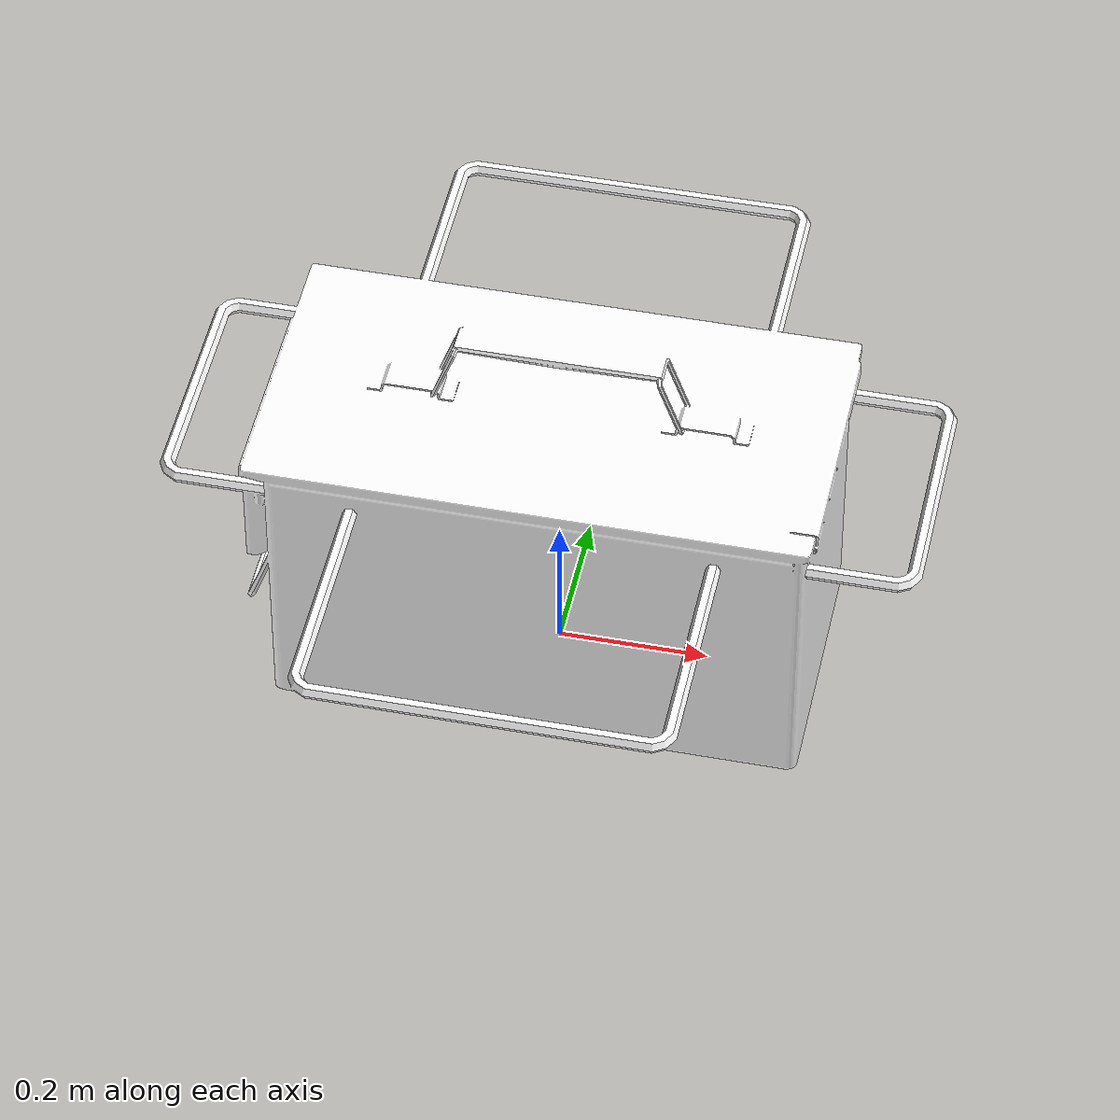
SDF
<?xml version='1.0' ?>
<sdf version="1.6">
    <model name="large_ammo_can_handles">
        <static>false</static>
        <link name="suspension_front_left">
            <pose>.35 .1779 0.025 0 0 0</pose>
            <inertial>
                <mass>0.5</mass>
                <inertia>
                    <ixx>8e-5</ixx>
                    <ixy>0.0</ixy>
                    <ixz>0.0</ixz>
                    <iyy>8e-5</iyy>
                    <iyz>0.0</iyz>
                    <izz>8e-5</izz>
                </inertia>
            </inertial>
        </link>
        <joint name="joint_suspension_front_left" type="prismatic">
            <parent>link</parent>
            <child>suspension_front_left</child>
            <axis>
                <xyz>0 0 1</xyz>
                <dynamics>
                    <damping>100</damping>
                    <spring_reference>-0.05</spring_reference>
                    <spring_stiffness>350</spring_stiffness>
                </dynamics>
                <limit>
                    <lower>-0.05</lower>
                    <upper>0.00</upper>
                </limit>
            </axis>
            <physics>
                <ode>
                    <implicit_spring_damper>true</implicit_spring_damper>
                </ode>
            </physics>
        </joint>
        <link name="caster_front_left">
            <pose>.35 .1779 0.025 0 0 0</pose>
            <inertial>
                <mass>0.5</mass>
                <inertia>
                    <ixx>8e-5</ixx>
                    <ixy>0.0</ixy>
                    <ixz>0.0</ixz>
                    <iyy>8e-5</iyy>
                    <iyz>0.0</iyz>
                    <izz>8e-5</izz>
                </inertia>
            </inertial>
            <collision name="caster_front_left_col">
                <geometry>
                    <sphere>
                        <radius>0.02</radius>
                    </sphere>
                </geometry>
                <surface>
                    <contact>
                        <ode>
                            <kp>10000000.0</kp>
                            <kd>1.0</kd>
                        </ode>
                    </contact>
                </surface>
            </collision>
        </link>
        <joint name="joint_caster_front_left" type="ball">
            <parent>suspension_front_left</parent>
            <child>caster_front_left</child>
            <axis>
                <xyz>0 0 1</xyz>
            </axis>
        </joint>
        <link name="suspension_front_right">
            <pose>.35 -.1779 0.025 0 0 0</pose>
            <inertial>
                <mass>0.5</mass>
                <inertia>
                    <ixx>8e-5</ixx>
                    <ixy>0.0</ixy>
                    <ixz>0.0</ixz>
                    <iyy>8e-5</iyy>
                    <iyz>0.0</iyz>
                    <izz>8e-5</izz>
                </inertia>
            </inertial>
        </link>
        <joint name="joint_suspension_front_right" type="prismatic">
            <parent>link</parent>
            <child>suspension_front_right</child>
            <axis>
                <xyz>0 0 1</xyz>
                <dynamics>
                    <damping>100</damping>
                    <spring_reference>-0.05</spring_reference>
                    <spring_stiffness>350</spring_stiffness>
                </dynamics>
                <limit>
                    <lower>-0.05</lower>
                    <upper>0.00</upper>
                </limit>
            </axis>
            <physics>
                <ode>
                    <implicit_spring_damper>true</implicit_spring_damper>
                </ode>
            </physics>
        </joint>
        <link name="caster_front_right">
            <pose>.35 -.1779 0.025 0 0 0</pose>
            <inertial>
                <mass>0.5</mass>
                <inertia>
                    <ixx>8e-5</ixx>
                    <ixy>0.0</ixy>
                    <ixz>0.0</ixz>
                    <iyy>8e-5</iyy>
                    <iyz>0.0</iyz>
                    <izz>8e-5</izz>
                </inertia>
            </inertial>
            <collision name="caster_front_right_col">
                <geometry>
                    <sphere>
                        <radius>0.02</radius>
                    </sphere>
                </geometry>
                <surface>
                    <contact>
                        <ode>
                            <kp>10000000.0</kp>
                            <kd>1.0</kd>
                        </ode>
                    </contact>
                </surface>
            </collision>
        </link>
        <joint name="joint_caster_front_right" type="ball">
            <parent>suspension_front_right</parent>
            <child>caster_front_right</child>
            <axis>
                <xyz>0 0 1</xyz>
            </axis>
        </joint>
        <link name="suspension_back_left">
            <pose>-.35 .1779 0.025 0 0 0</pose>
            <inertial>
                <mass>0.5</mass>
                <inertia>
                    <ixx>8e-5</ixx>
                    <ixy>0.0</ixy>
                    <ixz>0.0</ixz>
                    <iyy>8e-5</iyy>
                    <iyz>0.0</iyz>
                    <izz>8e-5</izz>
                </inertia>
            </inertial>
        </link>
        <joint name="joint_suspension_back_left" type="prismatic">
            <parent>link</parent>
            <child>suspension_back_left</child>
            <axis>
                <xyz>0 0 1</xyz>
                <dynamics>
                    <damping>100</damping>
                    <spring_reference>-0.05</spring_reference>
                    <spring_stiffness>350</spring_stiffness>
                </dynamics>
                <limit>
                    <lower>-0.05</lower>
                    <upper>0.00</upper>
                </limit>
            </axis>
            <physics>
                <ode>
                    <implicit_spring_damper>true</implicit_spring_damper>
                </ode>
            </physics>
        </joint>
        <link name="caster_back_left">
            <pose>-.35 .1779 0.025 0 0 0</pose>
            <inertial>
                <mass>0.5</mass>
                <inertia>
                    <ixx>8e-5</ixx>
                    <ixy>0.0</ixy>
                    <ixz>0.0</ixz>
                    <iyy>8e-5</iyy>
                    <iyz>0.0</iyz>
                    <izz>8e-5</izz>
                </inertia>
            </inertial>
            <collision name="caster_back_left_col">
                <geometry>
                    <sphere>
                        <radius>0.02</radius>
                    </sphere>
                </geometry>
                <surface>
                    <contact>
                        <ode>
                            <kp>10000000.0</kp>
                            <kd>1.0</kd>
                        </ode>
                    </contact>
                </surface>
            </collision>
        </link>
        <joint name="joint_caster_back_left" type="ball">
            <parent>suspension_back_left</parent>
            <child>caster_back_left</child>
            <axis>
                <xyz>0 0 1</xyz>
            </axis>
        </joint>
        <link name="suspension_back_right">
            <pose>-.35 -.1779 0.025 0 0 0</pose>
            <inertial>
                <mass>0.5</mass>
                <inertia>
                    <ixx>8e-5</ixx>
                    <ixy>0.0</ixy>
                    <ixz>0.0</ixz>
                    <iyy>8e-5</iyy>
                    <iyz>0.0</iyz>
                    <izz>8e-5</izz>
                </inertia>
            </inertial>
        </link>
        <joint name="joint_suspension_back_right" type="prismatic">
            <parent>link</parent>
            <child>suspension_back_right</child>
            <axis>
                <xyz>0 0 1</xyz>
                <dynamics>
                    <damping>100</damping>
                    <spring_reference>-0.05</spring_reference>
                    <spring_stiffness>350</spring_stiffness>
                </dynamics>
                <limit>
                    <lower>-0.05</lower>
                    <upper>0.00</upper>
                </limit>
            </axis>
            <physics>
                <ode>
                    <implicit_spring_damper>true</implicit_spring_damper>
                </ode>
            </physics>
        </joint>
        <link name="caster_back_right">
            <pose>-.35 -.1779 0.025 0 0 0</pose>
            <inertial>
                <mass>0.5</mass>
                <inertia>
                    <ixx>8e-5</ixx>
                    <ixy>0.0</ixy>
                    <ixz>0.0</ixz>
                    <iyy>8e-5</iyy>
                    <iyz>0.0</iyz>
                    <izz>8e-5</izz>
                </inertia>
            </inertial>
            <collision name="caster_back_right_col">
                <geometry>
                    <sphere>
                        <radius>0.02</radius>
                    </sphere>
                </geometry>
                <surface>
                    <contact>
                        <ode>
                            <kp>10000000.0</kp>
                            <kd>1.0</kd>
                        </ode>
                    </contact>
                </surface>
            </collision>
        </link>
        <joint name="joint_caster_back_right" type="ball">
            <parent>suspension_back_right</parent>
            <child>caster_back_right</child>
            <axis>
                <xyz>0 0 1</xyz>
            </axis>
        </joint>
        <link name="link">
            <inertial>
                <pose>0 0 0.23 0 0 0</pose>
                <mass>4</mass>
                <inertia>
                    <ixx>0.12386666</ixx>
                    <ixy>0.0</ixy>
                    <ixz>0.0</ixz>
                    <iyy>0.24333333</iyy>
                    <iyz>0.0</iyz>
                    <izz>0.22613333</izz>
                </inertia>
            </inertial>
            <visual name="visual">
                <geometry>
                    <mesh>
                        <uri>meshes/largeammocan.dae</uri>
                    </mesh>
                </geometry>
                <material>
                    <diffuse>1.0 1.0 1.0</diffuse>
                    <specular>1.0 1.0 1.0</specular>
                    <pbr>
                        <metal>
                            <albedo_map>materials/textures/LargeAmmoCan_Albedo.jpg</albedo_map>
                            <normal_map>materials/textures/LargeAmmoCan_Normal.jpg</normal_map>
                            <roughness_map>materials/textures/LargeAmmoCan_Roughness.jpg</roughness_map>
                            <metalness_map>materials/textures/LargeAmmoCan_Metalness.jpg</metalness_map>
                        </metal>
                    </pbr>
                </material>
            </visual>
            <collision name="Box068">
                <pose>0.235714 -0.158902 0.367364 1.5708 0.0 1.5708</pose>
                <geometry>
                    <box>
                        <size>0.02 0.02 0.517486</size>
                    </box>
                </geometry>
            </collision>
            <collision name="Box067">
                <pose>0.235714 0.158902 0.367364 1.5708 0.0 1.5708</pose>
                <geometry>
                    <box>
                        <size>0.02 0.02 0.517486</size>
                    </box>
                </geometry>
            </collision>
            <collision name="Box066">
                <pose>0.483951 -0.0032919 0.367364 1.5708 0.0 3.14159</pose>
                <geometry>
                    <box>
                        <size>0.02 0.02 0.326016</size>
                    </box>
                </geometry>
            </collision>
            <collision name="Box065">
                <pose>-0.48395 -0.0032919 0.367364 1.5708 0.0 3.14159</pose>
                <geometry>
                    <box>
                        <size>0.02 0.02 0.326016</size>
                    </box>
                </geometry>
            </collision>
            <collision name="Box064">
                <pose>-0.235714 -0.158902 0.367364 1.5708 0.0 -1.5708</pose>
                <geometry>
                    <box>
                        <size>0.02 0.02 0.517486</size>
                    </box>
                </geometry>
            </collision>
            <collision name="Box063">
                <pose>-0.235714 0.158902 0.367364 1.5708 0.0 -1.5708</pose>
                <geometry>
                    <box>
                        <size>0.02 0.02 0.517486</size>
                    </box>
                </geometry>
            </collision>
            <collision name="Box062">
                <pose>-0.000193328 -0.48429 0.367364 1.5708 0.0 1.5708</pose>
                <geometry>
                    <box>
                        <size>0.02 0.02 0.476087</size>
                    </box>
                </geometry>
            </collision>
            <collision name="Box061">
                <pose>-0.000193328 0.48429 0.367364 1.5708 0.0 1.5708</pose>
                <geometry>
                    <box>
                        <size>0.02 0.02 0.476087</size>
                    </box>
                </geometry>
            </collision>
            <collision name="Box060">
                <pose>-0.235466 0.235109 0.367364 1.5708 0.0 3.14159</pose>
                <geometry>
                    <box>
                        <size>0.02 0.02 0.517486</size>
                    </box>
                </geometry>
            </collision>
            <collision name="Box059">
                <pose>0.235466 0.235109 0.367364 1.5708 0.0 3.14159</pose>
                <geometry>
                    <box>
                        <size>0.02 0.02 0.517486</size>
                    </box>
                </geometry>
            </collision>
            <collision name="Box058">
                <pose>0.235466 -0.235109 0.367364 1.5708 0.0 0.0</pose>
                <geometry>
                    <box>
                        <size>0.02 0.02 0.517486</size>
                    </box>
                </geometry>
            </collision>
            <collision name="Box057">
                <pose>-0.235466 -0.235109 0.367364 1.5708 0.0 0.0</pose>
                <geometry>
                    <box>
                        <size>0.02 0.02 0.517486</size>
                    </box>
                </geometry>
            </collision>
            <collision name="Box056">
                <pose>0.193216 0.0 0.435433 0.0 0.0 0.0</pose>
                <geometry>
                    <box>
                        <size>0.0775621 0.0401611 0.0199517</size>
                    </box>
                </geometry>
            </collision>
            <collision name="Box055">
                <pose>0.146038 0.0 0.481055 0.0 1.22199 0.0</pose>
                <geometry>
                    <box>
                        <size>0.096177 0.0566271 0.00640152</size>
                    </box>
                </geometry>
            </collision>
            <collision name="Box054">
                <pose>-0.146977 0.0 0.481055 0.0 -1.222 0.0</pose>
                <geometry>
                    <box>
                        <size>0.096177 0.0566271 0.00640152</size>
                    </box>
                </geometry>
            </collision>
            <collision name="Box053">
                <pose>-0.192465 0.0 0.435433 0.0 0.0 0.0</pose>
                <geometry>
                    <box>
                        <size>0.0775621 0.0401611 0.0199517</size>
                    </box>
                </geometry>
            </collision>
            <collision name="Box052">
                <pose>0.0 0.0 0.521838 0.0 0.0 0.0</pose>
                <geometry>
                    <box>
                        <size>0.267456 0.0401611 0.0109183</size>
                    </box>
                </geometry>
            </collision>
            <collision name="Box051">
                <pose>-0.356661 0.0 0.126934 1.29054 0.0 -1.5708</pose>
                <geometry>
                    <box>
                        <size>0.177141 0.142282 0.0653334</size>
                    </box>
                </geometry>
            </collision>
            <collision name="Box050">
                <pose>-0.364988 0.0 0.363928 1.5708 0.0 -1.5708</pose>
                <geometry>
                    <box>
                        <size>0.275199 0.039926 0.0548801</size>
                    </box>
                </geometry>
            </collision>
            <collision name="Box049">
                <pose>-0.366465 0.0 0.277745 1.5708 0.0 -1.5708</pose>
                <geometry>
                    <box>
                        <size>0.243911 0.161882 0.0544445</size>
                    </box>
                </geometry>
            </collision>
            <collision name="Box048">
                <pose>0.0 0.0 0.413481 0.0 0.0 0.0</pose>
                <geometry>
                    <box>
                        <size>0.748722 0.391837 0.0338068</size>
                    </box>
                </geometry>
            </collision>
            <collision name="Box047">
                <pose>0.0 0.0 0.207483 0.0 0.0 0.0</pose>
                <geometry>
                    <box>
                        <size>0.702405 0.355924 0.414966</size>
                    </box>
                </geometry>
            </collision>
        </link>
    </model>
</sdf>
